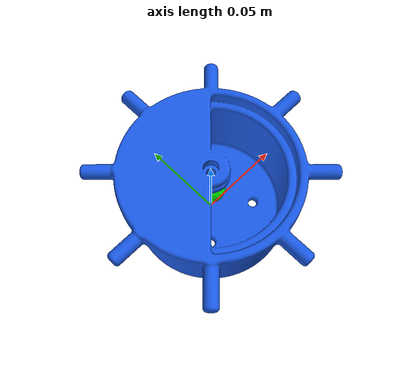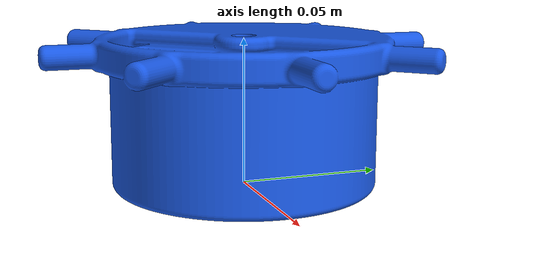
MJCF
<mujoco model="bottle_visual_object">
  <asset>
    <!-- Preprocessed from uploaded bottle STL: millimeters -> meters, xy-centered, bottom z=0. -->
    <mesh name="bottle_mesh" file="../meshes/bottle_visual_m.stl"/>
    <material name="bottle_mat" rgba="0.1 0.35 0.9 1" specular="0.35" shininess="0.4"/>
  </asset>

  <worldbody>
    <body>
      <body name="object">
        <geom name="bottle_visual" type="mesh" mesh="bottle_mesh" material="bottle_mat"
              contype="0" conaffinity="0" group="1"/>

        <!-- Bright debug visual proxy. Remove later after confirming placement. -->

        <!-- Simple collision proxy based on uploaded STL bounds: diameter ~=0.135 m, height ~=0.051 m. -->
        <geom name="bottle_collision" type="cylinder" pos="0 0 0.0255" size="0.0675 0.0255"
              rgba="0.1 0.1 0.1 0.0" density="80" friction="1.2 0.01 0.001"
              solimp="0.998 0.998 0.001" solref="0.002 1" group="0"/>

        <site name="bottle_center" pos="0 0 0.0255" size="0.008" rgba="0 1 0 1"/>
      </body>
      <site name="bottom_site" pos="0 0 0" size="0.005" rgba="0 0 0 0"/>
      <site name="top_site" pos="0 0 0.051" size="0.005" rgba="0 0 0 0"/>
      <site name="horizontal_radius_site" pos="0.080 0 0.0255" size="0.005" rgba="0 0 0 0"/>
    </body>
  </worldbody>
</mujoco>
